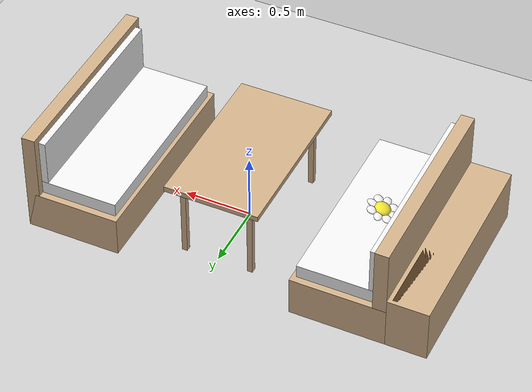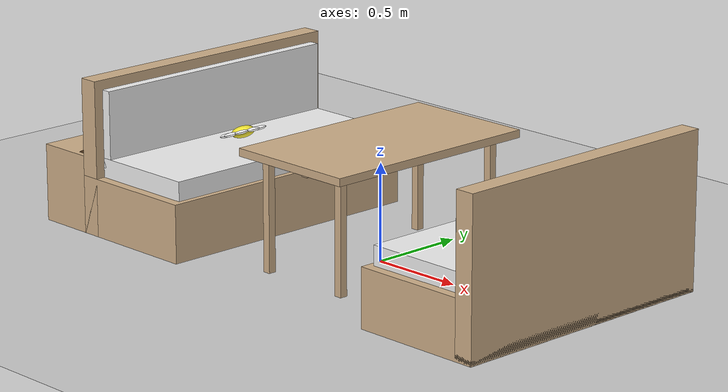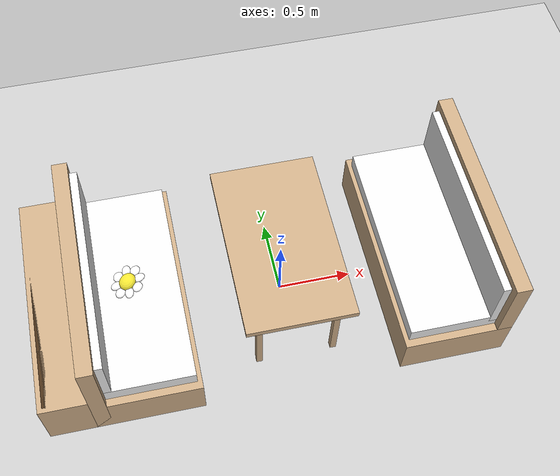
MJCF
<mujoco model="cafe_seating_module">
  <compiler angle="degree" coordinate="local" inertiafromgeom="true" autolimits="true"/>
  <option timestep="0.002" gravity="0 0 -9.81"/>

  <visual>
    <global offwidth="3840" offheight="2160" fovy="45"/>
    <quality shadowsize="8192" offsamples="16"/>
    <headlight ambient="0.3 0.3 0.3" diffuse="0.4 0.4 0.4" specular="0.1 0.1 0.1"/>
    <map znear="0.01" zfar="100" shadowscale="0.5"/>
  </visual>

  <asset>
    <texture name="tex_wood_light" type="2d" builtin="checker" rgb1="0.83 0.71 0.56" rgb2="0.80 0.67 0.52" width="4096" height="4096" mark="random" markrgb="0.76 0.62 0.45"/>
    <texture name="tex_fabric_white" type="2d" builtin="flat" rgb1="0.95 0.95 0.95" width="4096" height="4096"/>
    <texture name="tex_plant_green" type="2d" builtin="checker" rgb1="0.1 0.5 0.1" rgb2="0.15 0.55 0.15" width="2048" height="2048"/>

    <material name="mat_wood_light" texture="tex_wood_light" texrepeat="2 2" reflectance="0.1" shininess="0.2" specular="0.1"/>
    <material name="mat_cushion_white" texture="tex_fabric_white" reflectance="0.05" shininess="0.1"/>
    <material name="mat_plant_green" texture="tex_plant_green" reflectance="0.05" shininess="0.1"/>
    <material name="mat_flower_center" rgba="0.95 0.9 0.2 1" reflectance="0.1" shininess="0.2"/>
    <material name="mat_flower_petal" rgba="0.98 0.98 0.98 1" reflectance="0.1" shininess="0.2"/>
  </asset>

  <worldbody>
    <light name="top_light" pos="0 0 3" dir="0 0 -1" diffuse="0.8 0.8 0.8" specular="0.2 0.2 0.2" castshadow="true"/>
    <geom name="floor_temp" type="plane" pos="0 0 0" size="3 3 0.1" rgba="0.8 0.8 0.8 1"/>

    <!-- Seating Module Group -->
    <body name="seating_module" pos="0 0 0">

      <!-- Sofa 1 (Left) -->
      <body name="sofa_left" pos="-1.0 0 0" euler="0 0 0">
        <!-- Wood Base -->
        <geom name="sl_base" type="box" pos="0 0 0.15" size="0.35 0.75 0.15" material="mat_wood_light"/>
        <!-- Back Support -->
        <geom name="sl_back_support" type="box" pos="-0.3 0 0.4" size="0.05 0.75 0.4" material="mat_wood_light"/>
        <!-- Seat Cushion -->
        <geom name="sl_seat" type="box" pos="0 0 0.35" size="0.32 0.7 0.05" material="mat_cushion_white"/>
        <!-- Back Cushion -->
        <geom name="sl_back" type="box" pos="-0.25 0 0.55" size="0.05 0.7 0.2" material="mat_cushion_white"/>

        <!-- Flower Pillow Decoration -->
        <body name="flower_pillow" pos="0 0 0.45" euler="0 -20 0">
            <geom name="fp_center" type="ellipsoid" size="0.06 0.06 0.03" material="mat_flower_center"/>
            <!-- Petals -->
            <geom name="fp_p1" type="ellipsoid" pos="0.08 0 0" size="0.04 0.03 0.01" material="mat_flower_petal"/>
            <geom name="fp_p2" type="ellipsoid" pos="-0.08 0 0" size="0.04 0.03 0.01" material="mat_flower_petal"/>
            <geom name="fp_p3" type="ellipsoid" pos="0 0.08 0" size="0.03 0.04 0.01" material="mat_flower_petal"/>
            <geom name="fp_p4" type="ellipsoid" pos="0 -0.08 0" size="0.03 0.04 0.01" material="mat_flower_petal"/>
            <geom name="fp_p5" type="ellipsoid" pos="0.06 0.06 0" size="0.035 0.035 0.01" material="mat_flower_petal"/>
            <geom name="fp_p6" type="ellipsoid" pos="0.06 -0.06 0" size="0.035 0.035 0.01" material="mat_flower_petal"/>
            <geom name="fp_p7" type="ellipsoid" pos="-0.06 0.06 0" size="0.035 0.035 0.01" material="mat_flower_petal"/>
            <geom name="fp_p8" type="ellipsoid" pos="-0.06 -0.06 0" size="0.035 0.035 0.01" material="mat_flower_petal"/>
        </body>
      </body>

      <!-- Planter Box (Behind Left Sofa) -->
      <body name="planter_box" pos="-1.5 0 0">
         <geom name="pb_box" type="box" pos="0 0 0.2" size="0.15 0.75 0.2" material="mat_wood_light"/>
         <!-- Plants removed -->
         <geom name="pb_soil" type="box" pos="0 0 0.38" size="0.12 0.72 0.02" rgba="0.3 0.2 0.1 1"/>
      </body>

      <!-- Table (Center) -->
      <body name="table_center" pos="0 0 0">
        <geom name="tc_top" type="box" pos="0 0 0.6" size="0.35 0.6 0.02" material="mat_wood_light"/>
        <geom name="tc_leg1" type="box" pos="-0.25 -0.5 0.3" size="0.02 0.02 0.3" material="mat_wood_light"/>
        <geom name="tc_leg2" type="box" pos="0.25 -0.5 0.3" size="0.02 0.02 0.3" material="mat_wood_light"/>
        <geom name="tc_leg3" type="box" pos="-0.25 0.5 0.3" size="0.02 0.02 0.3" material="mat_wood_light"/>
        <geom name="tc_leg4" type="box" pos="0.25 0.5 0.3" size="0.02 0.02 0.3" material="mat_wood_light"/>
        <!-- Central support beam if needed -->
        <geom name="tc_beam" type="box" pos="0 0 0.55" size="0.02 0.5 0.02" material="mat_wood_light"/>
      </body>

      <!-- Sofa 2 (Right) -->
      <body name="sofa_right" pos="1.0 0 0" euler="0 0 180">
        <!-- Wood Base -->
        <geom name="sr_base" type="box" pos="0 0 0.15" size="0.35 0.75 0.15" material="mat_wood_light"/>
        <!-- Back Support -->
        <geom name="sr_back_support" type="box" pos="-0.3 0 0.4" size="0.05 0.75 0.4" material="mat_wood_light"/>
        <!-- Seat Cushion -->
        <geom name="sr_seat" type="box" pos="0 0 0.35" size="0.32 0.7 0.05" material="mat_cushion_white"/>
        <!-- Back Cushion -->
        <geom name="sr_back" type="box" pos="-0.25 0 0.55" size="0.05 0.7 0.2" material="mat_cushion_white"/>
      </body>

    </body>
  </worldbody>
</mujoco>
